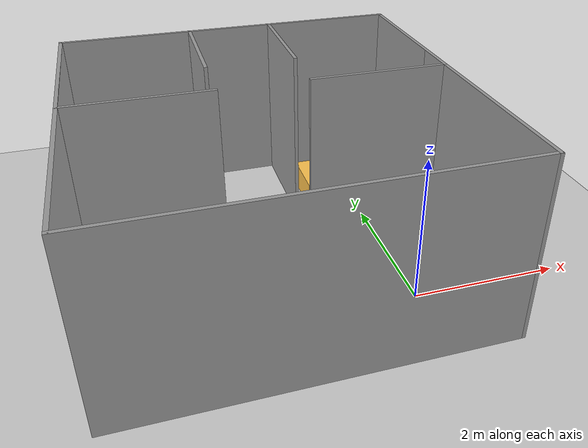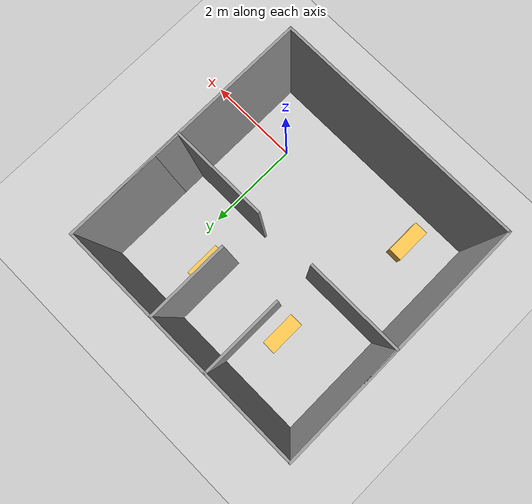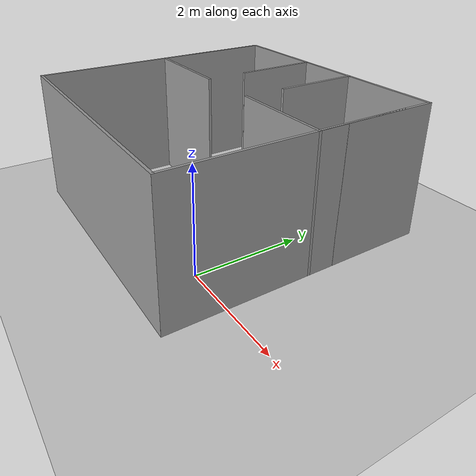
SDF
<sdf version="1.6">
 <world name="default">
  <light name="sun" type="directional">
   <pose>0 0 10 0 -0 0</pose>
   <diffuse>0.8 0.8 0.8 1</diffuse>
   <specular>0.2 0.2 0.2 1</specular>
   <attenuation>
    <range>1000</range>
    <constant>0.9</constant>
    <linear>0.01</linear>
    <quadratic>0.001</quadratic>
   </attenuation>
   <direction>-0.5 0.1 -0.9</direction>
  </light>
  <model name="ground_plane">
   <static>1</static>
   <link name="link">
    <collision name="collision">
     <geometry><plane><normal>0 0 1</normal><size>100 100</size></plane></geometry>
     <surface><friction><ode><mu>100</mu><mu2>50</mu2></ode></friction></surface>
    </collision>
    <visual name="visual">
     <cast_shadows>0</cast_shadows>
     <geometry><plane><normal>0 0 1</normal><size>100 100</size></plane></geometry>
     <material>
      <script><uri>file://media/materials/scripts/gazebo.material</uri><name>Gazebo/Grey</name></script>
     </material>
    </visual>
   </link>
  </model>
  <gravity>0 0 -9.8</gravity>
  <magnetic_field>6e-06 2.3e-05 -4.2e-05</magnetic_field>
  <atmosphere type="adiabatic"/>
  <physics name="default_physics" default="0" type="ode">
   <max_step_size>0.001</max_step_size>
   <real_time_factor>1</real_time_factor>
   <real_time_update_rate>1000</real_time_update_rate>
  </physics>
  <scene><ambient>0.4 0.4 0.4 1</ambient><background>0.7 0.7 0.7 1</background><shadows>1</shadows></scene>
  <audio><device>default</device></audio>
  <spherical_coordinates>
   <surface_model>EARTH_WGS84</surface_model>
   <latitude_deg>0</latitude_deg>
   <longitude_deg>0</longitude_deg>
   <elevation>0</elevation>
   <heading_deg>0</heading_deg>
  </spherical_coordinates>
  <model name="Untitled">
   <pose>-1.542 1.43345 0 0 -0 0</pose>
   <link name="Wall_0">
    <collision name="Wall_0_Collision">
     <geometry><box><size>4.974 0.05 2.5</size></box></geometry>
     <pose>0 0 1.25 0 -0 0</pose>
    </collision>
    <visual name="Wall_0_Visual">
     <pose>0 0 1.25 0 -0 0</pose>
     <geometry><box><size>4.974 0.05 2.5</size></box></geometry>
     <material>
      <script><uri>file://media/materials/scripts/gazebo.material</uri><name>Gazebo/Grey</name></script>
      <ambient>1 1 1 1</ambient>
     </material>
     <meta><layer>0</layer></meta>
    </visual>
    <pose>-0 -2.475 0 0 -0 0</pose>
   </link>
   <link name="Wall_12">
    <collision name="Wall_12_Collision">
     <geometry><box><size>2.4 0.05 2.5</size></box></geometry>
     <pose>0 0 1.25 0 -0 0</pose>
    </collision>
    <visual name="Wall_12_Visual">
     <pose>0 0 1.25 0 -0 0</pose>
     <geometry><box><size>2.4 0.05 2.5</size></box></geometry>
     <material>
      <script><uri>file://media/materials/scripts/gazebo.material</uri><name>Gazebo/Grey</name></script>
      <ambient>1 1 1 1</ambient>
     </material>
     <meta><layer>0</layer></meta>
    </visual>
    <pose>-2.462 1.3 0 0 -0 -1.5708</pose>
   </link>
   <link name="Wall_14">
    <collision name="Wall_14_Collision">
     <geometry><box><size>1.9 0.05 2.5</size></box></geometry>
     <pose>0 0 1.25 0 -0 0</pose>
    </collision>
    <visual name="Wall_14_Visual">
     <pose>0 0 1.25 0 -0 0</pose>
     <geometry><box><size>1.9 0.05 2.5</size></box></geometry>
     <material>
      <script><uri>file://media/materials/scripts/gazebo.material</uri><name>Gazebo/Grey</name></script>
      <ambient>1 1 1 1</ambient>
     </material>
     <meta><layer>0</layer></meta>
    </visual>
    <pose>-1.537 0.125 0 0 -0 0</pose>
   </link>
   <link name="Wall_2">
    <collision name="Wall_2_Collision">
     <geometry><box><size>5 0.05 2.5</size></box></geometry>
     <pose>0 0 1.25 0 -0 0</pose>
    </collision>
    <visual name="Wall_2_Visual">
     <pose>0 0 1.25 0 -0 0</pose>
     <geometry><box><size>5 0.05 2.5</size></box></geometry>
     <material>
      <script><uri>file://media/materials/scripts/gazebo.material</uri><name>Gazebo/Grey</name></script>
      <ambient>1 1 1 1</ambient>
     </material>
     <meta><layer>0</layer></meta>
    </visual>
    <pose>2.462 0 0 0 -0 1.5708</pose>
   </link>
   <link name="Wall_22">
    <collision name="Wall_22_Collision">
     <geometry><box><size>1.9 0.05 2.5</size></box></geometry>
     <pose>0 0 1.25 0 -0 0</pose>
    </collision>
    <visual name="Wall_22_Visual">
     <pose>0 0 1.25 0 -0 0</pose>
     <geometry><box><size>1.9 0.05 2.5</size></box></geometry>
     <material>
      <script><uri>file://media/materials/scripts/gazebo.material</uri><name>Gazebo/Grey</name></script>
      <ambient>1 1 1 1</ambient>
     </material>
     <meta><layer>0</layer></meta>
    </visual>
    <pose>-1.537 2.475 0 0 -0 0</pose>
   </link>
   <link name="Wall_24">
    <collision name="Wall_24_Collision">
     <geometry><box><size>1.6 0.05 2.5</size></box></geometry>
     <pose>0 0 1.25 0 -0 0</pose>
    </collision>
    <visual name="Wall_24_Visual">
     <pose>0 0 1.25 0 -0 0</pose>
     <geometry><box><size>1.6 0.05 2.5</size></box></geometry>
     <material>
      <script><uri>file://media/materials/scripts/gazebo.material</uri><name>Gazebo/Grey</name></script>
      <ambient>1 1 1 1</ambient>
     </material>
     <meta><layer>0</layer></meta>
    </visual>
    <pose>-0.612 1.7 0 0 -0 -1.5708</pose>
   </link>
   <link name="Wall_28">
    <collision name="Wall_28_Collision">
     <geometry><box><size>1.9 0.05 2.5</size></box></geometry>
     <pose>0 0 1.25 0 -0 0</pose>
    </collision>
    <visual name="Wall_28_Visual">
     <pose>0 0 1.25 0 -0 0</pose>
     <geometry><box><size>1.9 0.05 2.5</size></box></geometry>
     <material>
      <script><uri>file://media/materials/scripts/gazebo.material</uri><name>Gazebo/Grey</name></script>
      <ambient>1 1 1 1</ambient>
     </material>
     <meta><layer>0</layer></meta>
    </visual>
    <pose>1.537 2.475 0 0 -0 3.14159</pose>
   </link>
   <link name="Wall_30">
    <collision name="Wall_30_Collision">
     <geometry><box><size>1.6 0.05 2.5</size></box></geometry>
     <pose>0 0 1.25 0 -0 0</pose>
    </collision>
    <visual name="Wall_30_Visual">
     <pose>0 0 1.25 0 -0 0</pose>
     <geometry><box><size>1.6 0.05 2.5</size></box></geometry>
     <material>
      <script><uri>file://media/materials/scripts/gazebo.material</uri><name>Gazebo/Grey</name></script>
      <ambient>1 1 1 1</ambient>
     </material>
     <meta><layer>0</layer></meta>
    </visual>
    <pose>0.612 1.7 0 0 -0 -1.5708</pose>
   </link>
   <link name="Wall_36">
    <collision name="Wall_36_Collision">
     <geometry><box><size>2.4 0.05 2.5</size></box></geometry>
     <pose>0 0 1.25 0 -0 0</pose>
    </collision>
    <visual name="Wall_36_Visual">
     <pose>0 0 1.25 0 -0 0</pose>
     <geometry><box><size>2.4 0.05 2.5</size></box></geometry>
     <material>
      <script><uri>file://media/materials/scripts/gazebo.material</uri><name>Gazebo/Grey</name></script>
      <ambient>1 1 1 1</ambient>
     </material>
     <meta><layer>0</layer></meta>
    </visual>
    <pose>2.462 1.3 0 0 -0 -1.5708</pose>
   </link>
   <link name="Wall_38">
    <collision name="Wall_38_Collision">
     <geometry><box><size>1.9 0.05 2.5</size></box></geometry>
     <pose>0 0 1.25 0 -0 0</pose>
    </collision>
    <visual name="Wall_38_Visual">
     <pose>0 0 1.25 0 -0 0</pose>
     <geometry><box><size>1.9 0.05 2.5</size></box></geometry>
     <material>
      <script><uri>file://media/materials/scripts/gazebo.material</uri><name>Gazebo/Grey</name></script>
      <ambient>1 1 1 1</ambient>
     </material>
     <meta><layer>0</layer></meta>
    </visual>
    <pose>1.537 0.125 0 0 -0 3.14159</pose>
   </link>
   <link name="Wall_40">
    <collision name="Wall_40_Collision">
     <geometry><box><size>1.274 0.05 2.5</size></box></geometry>
     <pose>0 0 1.25 0 -0 0</pose>
    </collision>
    <visual name="Wall_40_Visual">
     <pose>0 0 1.25 0 -0 0</pose>
     <geometry><box><size>1.274 0.05 2.5</size></box></geometry>
     <material>
      <script><uri>file://media/materials/scripts/gazebo.material</uri><name>Gazebo/Grey</name></script>
      <ambient>1 1 1 1</ambient>
     </material>
     <meta><layer>0</layer></meta>
    </visual>
    <pose>-0 2.475 0 0 -0 0</pose>
   </link>
   <link name="Wall_6">
    <collision name="Wall_6_Collision">
     <geometry><box><size>4.9913 0.05 2.5</size></box></geometry>
     <pose>0 0 1.25 0 -0 0</pose>
    </collision>
    <visual name="Wall_6_Visual">
     <pose>0 0 1.25 0 -0 0</pose>
     <geometry><box><size>4.9913 0.05 2.5</size></box></geometry>
     <material>
      <script><uri>file://media/materials/scripts/gazebo.material</uri><name>Gazebo/Grey</name></script>
      <ambient>1 1 1 1</ambient>
     </material>
     <meta><layer>0</layer></meta>
    </visual>
    <pose>-2.462 0.004348 0 0 -0 -1.5708</pose>
   </link>
   <static>1</static>
  </model>
  <model name="Box_15x30">
   <link name="Wall">
    <pose>0 0 0.1985 0 -0 0</pose>
    <inertial>
     <mass>5</mass>
     <inertia><ixx>0.3089</ixx><iyy>0.1022</iyy><izz>0.2797</izz><ixy>0</ixy><ixz>0</ixz><iyz>0</iyz></inertia>
    </inertial>
    <collision name="Wall_Collision"><geometry><box><size>0.296 0.764 0.397</size></box></geometry></collision>
    <visual name="Wall_Visual">
     <geometry><box><size>0.296 0.764 0.397</size></box></geometry>
     <material>
      <script><uri>file://media/materials/scripts/gazebo.material</uri><name>Gazebo/Grey</name></script>
      <ambient>1 0.764706 0.305882 1</ambient>
     </material>
    </visual>
   </link>
   <static>1</static>
   <pose>-3.07167 -0.33943 0 0 -0 0</pose>
  </model>
  <model name="Box_15x30_0">
   <link name="Wall">
    <pose>0 0 0.1985 0 -0 0</pose>
    <inertial>
     <mass>5</mass>
     <inertia><ixx>0.3089</ixx><iyy>0.1022</iyy><izz>0.2797</izz><ixy>0</ixy><ixz>0</ixz><iyz>0</iyz></inertia>
    </inertial>
    <collision name="Wall_Collision"><geometry><box><size>0.296 0.764 0.397</size></box></geometry></collision>
    <visual name="Wall_Visual">
     <geometry><box><size>0.296 0.764 0.397</size></box></geometry>
     <material>
      <script><uri>file://media/materials/scripts/gazebo.material</uri><name>Gazebo/Grey</name></script>
      <ambient>1 0.764706 0.305882 1</ambient>
     </material>
    </visual>
   </link>
   <static>1</static>
   <pose>-0.568367 2.79421 0 0 -0 0</pose>
  </model>
  <model name="Box_15x30_1">
   <link name="Wall">
    <pose>0 0 0.1985 0 -0 0</pose>
    <inertial>
     <mass>5</mass>
     <inertia><ixx>0.3089</ixx><iyy>0.1022</iyy><izz>0.2797</izz><ixy>0</ixy><ixz>0</ixz><iyz>0</iyz></inertia>
    </inertial>
    <collision name="Wall_Collision"><geometry><box><size>0.296 0.764 0.397</size></box></geometry></collision>
    <visual name="Wall_Visual">
     <geometry><box><size>0.296 0.764 0.397</size></box></geometry>
     <material>
      <script><uri>file://media/materials/scripts/gazebo.material</uri><name>Gazebo/Grey</name></script>
      <ambient>1 0.764706 0.305882 1</ambient>
     </material>
    </visual>
   </link>
   <static>1</static>
   <pose>-2.58447 2.70031 0 0 -0 0</pose>
  </model>
 </world>
</sdf>
